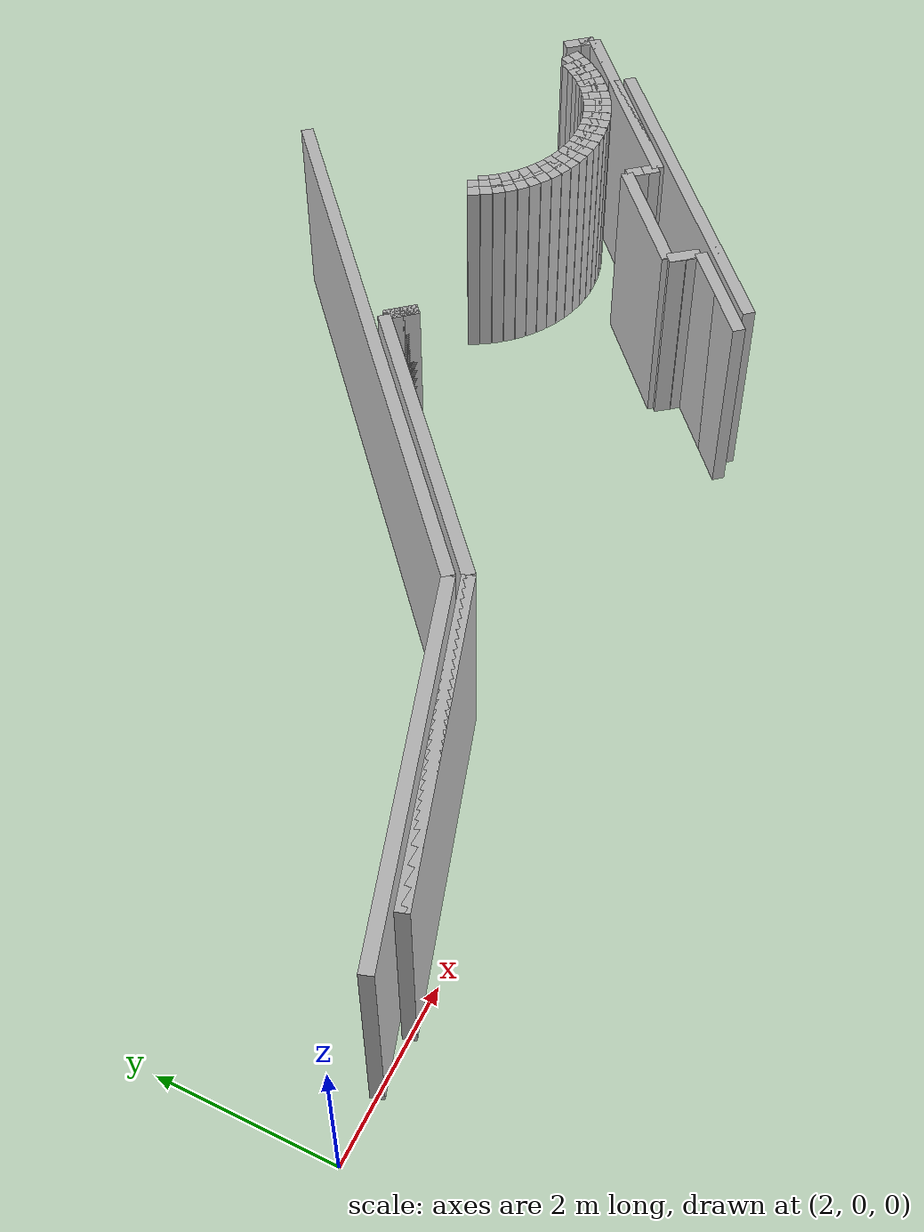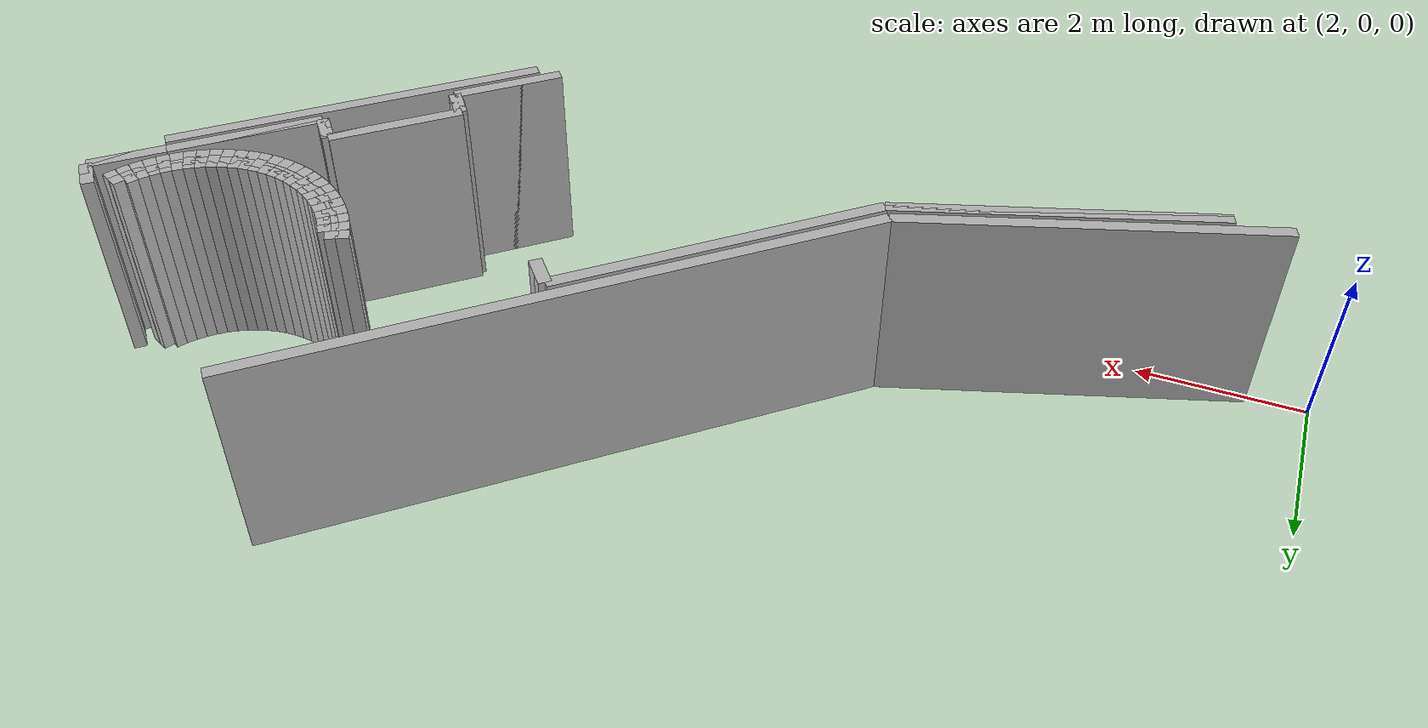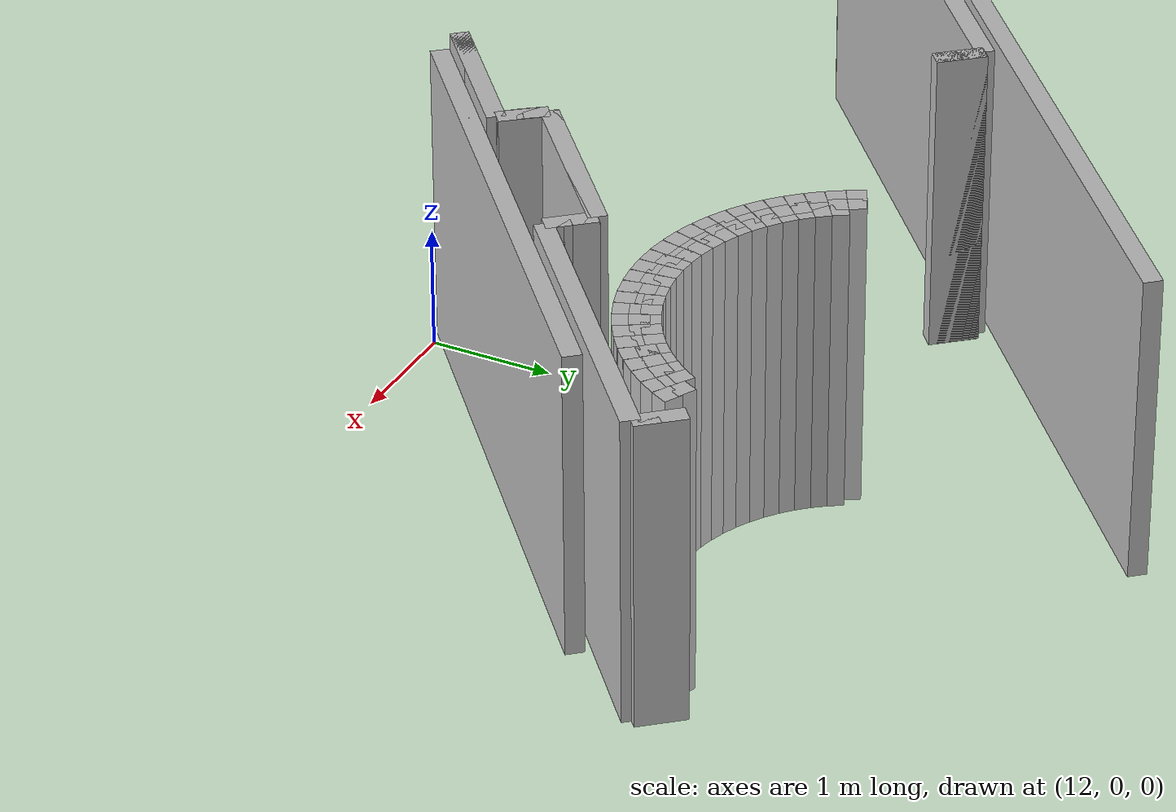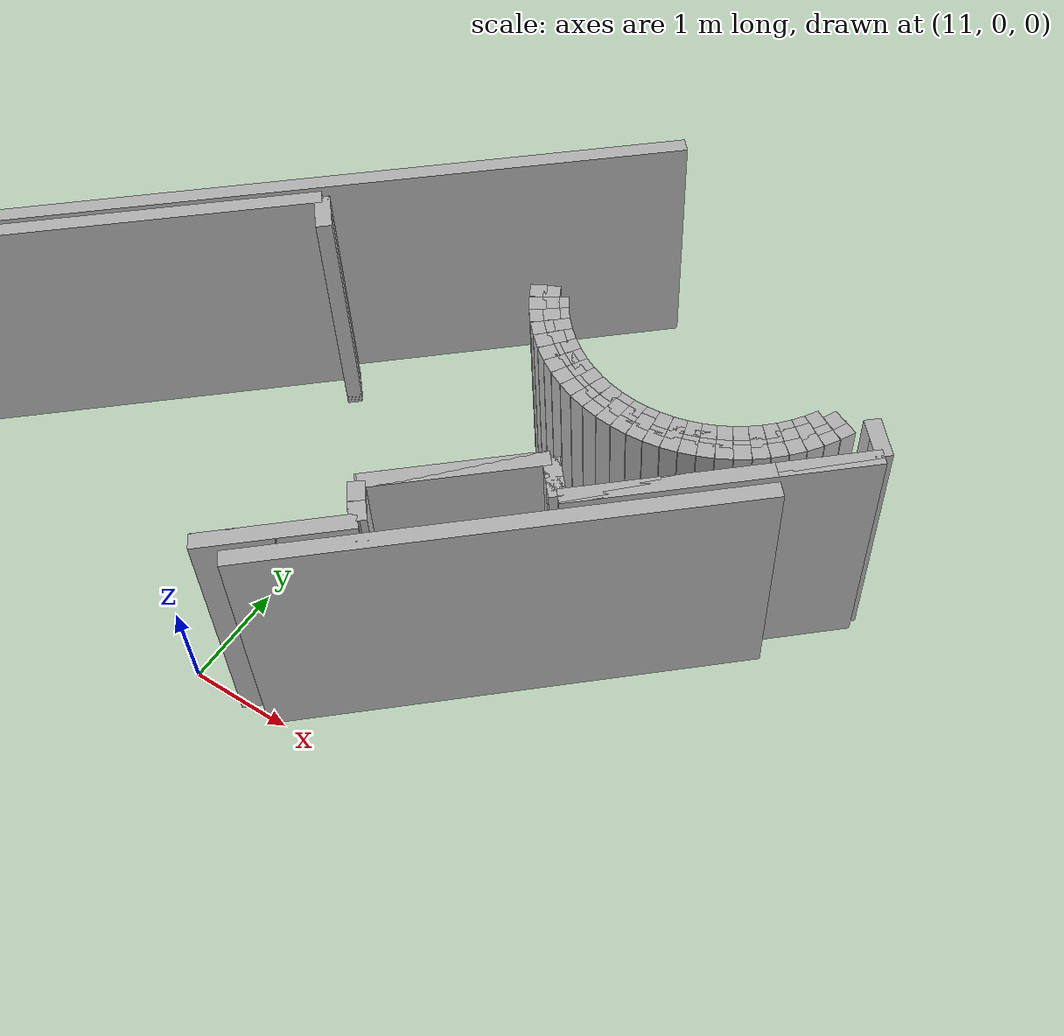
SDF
<sdf version="1.6">
 <model name="sps_1000">
  <static>1</static>
  <allow_auto_disable>0</allow_auto_disable>
  <link name="Wall469">
   <collision name="collision"><geometry><box><size>1.33494 0.15 2.5</size></box></geometry></collision>
   <visual name="visual">
    <geometry><box><size>1.33494 0.15 2.5</size></box></geometry>
    <transparency>0.0</transparency>
   </visual>
   <pose>12.0152 0.435035 1.25 0 -0 0.709909</pose>
  </link>
  <link name="Wall1686">
   <collision name="collision"><geometry><box><size>1.60002 0.15 2.5</size></box></geometry></collision>
   <visual name="visual">
    <geometry><box><size>1.60002 0.15 2.5</size></box></geometry>
    <transparency>0.0</transparency>
   </visual>
   <pose>12.8671 1.69459 1.25 0 -0 0.710016</pose>
  </link>
  <link name="Wall1979">
   <collision name="collision"><geometry><box><size>0.399695 0.15 2.5</size></box></geometry></collision>
   <visual name="visual">
    <geometry><box><size>0.399695 0.15 2.5</size></box></geometry>
    <transparency>0.0</transparency>
   </visual>
   <pose>10.099 3.5352 1.25 0 -0 2.28108</pose>
  </link>
  <link name="Wall2315">
   <collision name="collision"><geometry><box><size>0.00130621 0.15 2.5</size></box></geometry></collision>
   <visual name="visual">
    <geometry><box><size>0.00130621 0.15 2.5</size></box></geometry>
    <transparency>0.0</transparency>
   </visual>
   <pose>12.6525 0.717391 1.25 0 -0 2.22364</pose>
  </link>
  <link name="Wall7673">
   <collision name="collision"><geometry><box><size>3.80529 0.15 2.5</size></box></geometry></collision>
   <visual name="visual">
    <geometry><box><size>3.80529 0.15 2.5</size></box></geometry>
    <transparency>0.0</transparency>
   </visual>
   <pose>5.2102 0.577644 1.25 0 -0 0.308469</pose>
  </link>
  <link name="Wall7674">
   <collision name="collision"><geometry><box><size>3.88392 0.15 2.5</size></box></geometry></collision>
   <visual name="visual">
    <geometry><box><size>3.88392 0.15 2.5</size></box></geometry>
    <transparency>0.0</transparency>
   </visual>
   <pose>8.49584 2.421 1.25 0 -0 0.70992</pose>
  </link>
  <link name="Wall7675">
   <collision name="collision"><geometry><box><size>0.399695 0.15 2.5</size></box></geometry></collision>
   <visual name="visual">
    <geometry><box><size>0.399695 0.15 2.5</size></box></geometry>
    <transparency>0.0</transparency>
   </visual>
   <pose>10.099 3.5352 1.25 0 0 -0.860514</pose>
  </link>
  <link name="Wall7697">
   <collision name="collision"><geometry><box><size>0.400092 0.15 2.5</size></box></geometry></collision>
   <visual name="visual">
    <geometry><box><size>0.400092 0.15 2.5</size></box></geometry>
    <transparency>0.0</transparency>
   </visual>
   <pose>15.6517 3.8242 1.25 0 0 -0.860764</pose>
  </link>
  <link name="Wall7698">
   <collision name="collision"><geometry><box><size>2.69978 0.15 2.5</size></box></geometry></collision>
   <visual name="visual">
    <geometry><box><size>2.69978 0.15 2.5</size></box></geometry>
    <transparency>0.0</transparency>
   </visual>
   <pose>14.7583 2.79271 1.25 0 0 -2.4317</pose>
  </link>
  <link name="Wall7699">
   <collision name="collision"><geometry><box><size>0.399787 0.15 2.5</size></box></geometry></collision>
   <visual name="visual">
    <geometry><box><size>0.399787 0.15 2.5</size></box></geometry>
    <transparency>0.0</transparency>
   </visual>
   <pose>13.6041 2.0645 1.25 0 -0 2.28088</pose>
  </link>
  <link name="Wall7700">
   <collision name="collision"><geometry><box><size>1.58531 0.15 2.5</size></box></geometry></collision>
   <visual name="visual">
    <geometry><box><size>1.58531 0.15 2.5</size></box></geometry>
    <transparency>0.0</transparency>
   </visual>
   <pose>12.8727 1.69939 1.25 0 0 -2.43157</pose>
  </link>
  <link name="Wall7701">
   <collision name="collision"><geometry><box><size>0.400176 0.15 2.5</size></box></geometry></collision>
   <visual name="visual">
    <geometry><box><size>0.400176 0.15 2.5</size></box></geometry>
    <transparency>0.0</transparency>
   </visual>
   <pose>12.3965 1.02638 1.25 0 0 -0.896603</pose>
  </link>
  <link name="Wall7702">
   <collision name="collision"><geometry><box><size>1.33494 0.15 2.5</size></box></geometry></collision>
   <visual name="visual">
    <geometry><box><size>1.33494 0.15 2.5</size></box></geometry>
    <transparency>0.0</transparency>
   </visual>
   <pose>12.0152 0.435035 1.25 0 0 -2.43168</pose>
  </link>
  <link name="Wall9829">
   <collision name="collision"><geometry><box><size>0.130966 0.15 2.5</size></box></geometry></collision>
   <visual name="visual">
    <geometry><box><size>0.130966 0.15 2.5</size></box></geometry>
    <transparency>0.0</transparency>
   </visual>
   <pose>15.1247 3.7213 1.25 0 0 -2.13863</pose>
  </link>
  <link name="Wall9830">
   <collision name="collision"><geometry><box><size>0.130818 0.15 2.5</size></box></geometry></collision>
   <visual name="visual">
    <geometry><box><size>0.130818 0.15 2.5</size></box></geometry>
    <transparency>0.0</transparency>
   </visual>
   <pose>15.0496 3.61418 1.25 0 0 -2.22484</pose>
  </link>
  <link name="Wall9831">
   <collision name="collision"><geometry><box><size>0.130928 0.15 2.5</size></box></geometry></collision>
   <visual name="visual">
    <geometry><box><size>0.130928 0.15 2.5</size></box></geometry>
    <transparency>0.0</transparency>
   </visual>
   <pose>14.9655 3.51408 1.25 0 0 -2.31432</pose>
  </link>
  <link name="Wall9832">
   <collision name="collision"><geometry><box><size>0.130763 0.15 2.5</size></box></geometry></collision>
   <visual name="visual">
    <geometry><box><size>0.130763 0.15 2.5</size></box></geometry>
    <transparency>0.0</transparency>
   </visual>
   <pose>14.873 3.42171 1.25 0 0 -2.39944</pose>
  </link>
  <link name="Wall9833">
   <collision name="collision"><geometry><box><size>0.130855 0.15 2.5</size></box></geometry></collision>
   <visual name="visual">
    <geometry><box><size>0.130855 0.15 2.5</size></box></geometry>
    <transparency>0.0</transparency>
   </visual>
   <pose>14.7729 3.33769 1.25 0 0 -2.48718</pose>
  </link>
  <link name="Wall9834">
   <collision name="collision"><geometry><box><size>0.130783 0.15 2.5</size></box></geometry></collision>
   <visual name="visual">
    <geometry><box><size>0.130783 0.15 2.5</size></box></geometry>
    <transparency>0.0</transparency>
   </visual>
   <pose>14.6659 3.26277 1.25 0 0 -2.57508</pose>
  </link>
  <link name="Wall9835">
   <collision name="collision"><geometry><box><size>0.131066 0.15 2.5</size></box></geometry></collision>
   <visual name="visual">
    <geometry><box><size>0.131066 0.15 2.5</size></box></geometry>
    <transparency>0.0</transparency>
   </visual>
   <pose>14.5526 3.19737 1.25 0 0 -2.66087</pose>
  </link>
  <link name="Wall9836">
   <collision name="collision"><geometry><box><size>0.130949 0.15 2.5</size></box></geometry></collision>
   <visual name="visual">
    <geometry><box><size>0.130949 0.15 2.5</size></box></geometry>
    <transparency>0.0</transparency>
   </visual>
   <pose>14.434 3.14207 1.25 0 0 -2.74992</pose>
  </link>
  <link name="Wall9837">
   <collision name="collision"><geometry><box><size>0.130765 0.15 2.5</size></box></geometry></collision>
   <visual name="visual">
    <geometry><box><size>0.130765 0.15 2.5</size></box></geometry>
    <transparency>0.0</transparency>
   </visual>
   <pose>14.3111 3.09749 1.25 0 0 -2.83726</pose>
  </link>
  <link name="Wall9838">
   <collision name="collision"><geometry><box><size>0.130742 0.15 2.5</size></box></geometry></collision>
   <visual name="visual">
    <geometry><box><size>0.130742 0.15 2.5</size></box></geometry>
    <transparency>0.0</transparency>
   </visual>
   <pose>14.1849 3.0637 1.25 0 0 -2.92277</pose>
  </link>
  <link name="Wall9839">
   <collision name="collision"><geometry><box><size>0.130934 0.15 2.5</size></box></geometry></collision>
   <visual name="visual">
    <geometry><box><size>0.130934 0.15 2.5</size></box></geometry>
    <transparency>0.0</transparency>
   </visual>
   <pose>14.0561 3.041 1.25 0 0 -3.01117</pose>
  </link>
  <link name="Wall9840">
   <collision name="collision"><geometry><box><size>0.130919 0.15 2.5</size></box></geometry></collision>
   <visual name="visual">
    <geometry><box><size>0.130919 0.15 2.5</size></box></geometry>
    <transparency>0.0</transparency>
   </visual>
   <pose>13.9258 3.02968 1.25 0 0 -3.09869</pose>
  </link>
  <link name="Wall9841">
   <collision name="collision"><geometry><box><size>0.130927 0.15 2.5</size></box></geometry></collision>
   <visual name="visual">
    <geometry><box><size>0.130927 0.15 2.5</size></box></geometry>
    <transparency>0.0</transparency>
   </visual>
   <pose>13.795 3.02977 1.25 0 -0 3.09729</pose>
  </link>
  <link name="Wall9842">
   <collision name="collision"><geometry><box><size>0.130692 0.15 2.5</size></box></geometry></collision>
   <visual name="visual">
    <geometry><box><size>0.130692 0.15 2.5</size></box></geometry>
    <transparency>0.0</transparency>
   </visual>
   <pose>13.6648 3.04118 1.25 0 -0 3.01092</pose>
  </link>
  <link name="Wall9843">
   <collision name="collision"><geometry><box><size>0.130921 0.15 2.5</size></box></geometry></collision>
   <visual name="visual">
    <geometry><box><size>0.130921 0.15 2.5</size></box></geometry>
    <transparency>0.0</transparency>
   </visual>
   <pose>13.5362 3.06389 1.25 0 -0 2.92308</pose>
  </link>
  <link name="Wall9844">
   <collision name="collision"><geometry><box><size>0.130896 0.15 2.5</size></box></geometry></collision>
   <visual name="visual">
    <geometry><box><size>0.130896 0.15 2.5</size></box></geometry>
    <transparency>0.0</transparency>
   </visual>
   <pose>13.4098 3.09779 1.25 0 -0 2.83562</pose>
  </link>
  <link name="Wall9845">
   <collision name="collision"><geometry><box><size>0.130724 0.15 2.5</size></box></geometry></collision>
   <visual name="visual">
    <geometry><box><size>0.130724 0.15 2.5</size></box></geometry>
    <transparency>0.0</transparency>
   </visual>
   <pose>13.287 3.1425 1.25 0 -0 2.74921</pose>
  </link>
  <link name="Wall9846">
   <collision name="collision"><geometry><box><size>0.131066 0.15 2.5</size></box></geometry></collision>
   <visual name="visual">
    <geometry><box><size>0.131066 0.15 2.5</size></box></geometry>
    <transparency>0.0</transparency>
   </visual>
   <pose>13.1685 3.1978 1.25 0 -0 2.66087</pose>
  </link>
  <link name="Wall9847">
   <collision name="collision"><geometry><box><size>0.130628 0.15 2.5</size></box></geometry></collision>
   <visual name="visual">
    <geometry><box><size>0.130628 0.15 2.5</size></box></geometry>
    <transparency>0.0</transparency>
   </visual>
   <pose>13.0554 3.2632 1.25 0 -0 2.57433</pose>
  </link>
  <link name="Wall9848">
   <collision name="collision"><geometry><box><size>0.130929 0.15 2.5</size></box></geometry></collision>
   <visual name="visual">
    <geometry><box><size>0.130929 0.15 2.5</size></box></geometry>
    <transparency>0.0</transparency>
   </visual>
   <pose>12.9484 3.33818 1.25 0 -0 2.48644</pose>
  </link>
  <link name="Wall9849">
   <collision name="collision"><geometry><box><size>0.130984 0.15 2.5</size></box></geometry></collision>
   <visual name="visual">
    <geometry><box><size>0.130984 0.15 2.5</size></box></geometry>
    <transparency>0.0</transparency>
   </visual>
   <pose>12.8481 3.42229 1.25 0 -0 2.40036</pose>
  </link>
  <link name="Wall9850">
   <collision name="collision"><geometry><box><size>0.130639 0.15 2.5</size></box></geometry></collision>
   <visual name="visual">
    <geometry><box><size>0.130639 0.15 2.5</size></box></geometry>
    <transparency>0.0</transparency>
   </visual>
   <pose>12.7557 3.51469 1.25 0 -0 2.31191</pose>
  </link>
  <link name="Wall9851">
   <collision name="collision"><geometry><box><size>0.131075 0.15 2.5</size></box></geometry></collision>
   <visual name="visual">
    <geometry><box><size>0.131075 0.15 2.5</size></box></geometry>
    <transparency>0.0</transparency>
   </visual>
   <pose>12.6717 3.61488 1.25 0 -0 2.2251</pose>
  </link>
  <link name="Wall9852">
   <collision name="collision"><geometry><box><size>0.130834 0.15 2.5</size></box></geometry></collision>
   <visual name="visual">
    <geometry><box><size>0.130834 0.15 2.5</size></box></geometry>
    <transparency>0.0</transparency>
   </visual>
   <pose>12.5968 3.72209 1.25 0 -0 2.13706</pose>
  </link>
  <link name="Wall15311">
   <collision name="collision"><geometry><box><size>0.137969 0.15 2.5</size></box></geometry></collision>
   <visual name="visual">
    <geometry><box><size>0.137969 0.15 2.5</size></box></geometry>
    <transparency>0.0</transparency>
   </visual>
   <pose>15.2611 3.7975 1.25 0 0 -2.04988</pose>
  </link>
  <link name="Wall15312">
   <collision name="collision"><geometry><box><size>0.137889 0.15 2.5</size></box></geometry></collision>
   <visual name="visual">
    <geometry><box><size>0.137889 0.15 2.5</size></box></geometry>
    <transparency>0.0</transparency>
   </visual>
   <pose>15.1922 3.67818 1.25 0 0 -2.13916</pose>
  </link>
  <link name="Wall15313">
   <collision name="collision"><geometry><box><size>0.137643 0.15 2.5</size></box></geometry></collision>
   <visual name="visual">
    <geometry><box><size>0.137643 0.15 2.5</size></box></geometry>
    <transparency>0.0</transparency>
   </visual>
   <pose>15.1132 3.56547 1.25 0 0 -2.22538</pose>
  </link>
  <link name="Wall15314">
   <collision name="collision"><geometry><box><size>0.138025 0.15 2.5</size></box></geometry></collision>
   <visual name="visual">
    <geometry><box><size>0.138025 0.15 2.5</size></box></geometry>
    <transparency>0.0</transparency>
   </visual>
   <pose>15.0246 3.45998 1.25 0 0 -2.31209</pose>
  </link>
  <link name="Wall15315">
   <collision name="collision"><geometry><box><size>0.13786 0.15 2.5</size></box></geometry></collision>
   <visual name="visual">
    <geometry><box><size>0.13786 0.15 2.5</size></box></geometry>
    <transparency>0.0</transparency>
   </visual>
   <pose>14.9271 3.36259 1.25 0 0 -2.4016</pose>
  </link>
  <link name="Wall15316">
   <collision name="collision"><geometry><box><size>0.137792 0.15 2.5</size></box></geometry></collision>
   <visual name="visual">
    <geometry><box><size>0.137792 0.15 2.5</size></box></geometry>
    <transparency>0.0</transparency>
   </visual>
   <pose>14.8216 3.27409 1.25 0 0 -2.4856</pose>
  </link>
  <link name="Wall15317">
   <collision name="collision"><geometry><box><size>0.137912 0.15 2.5</size></box></geometry></collision>
   <visual name="visual">
    <geometry><box><size>0.137912 0.15 2.5</size></box></geometry>
    <transparency>0.0</transparency>
   </visual>
   <pose>14.7089 3.19508 1.25 0 0 -2.57544</pose>
  </link>
  <link name="Wall15318">
   <collision name="collision"><geometry><box><size>0.137753 0.15 2.5</size></box></geometry></collision>
   <visual name="visual">
    <geometry><box><size>0.137753 0.15 2.5</size></box></geometry>
    <transparency>0.0</transparency>
   </visual>
   <pose>14.5896 3.1263 1.25 0 0 -2.6617</pose>
  </link>
  <link name="Wall15319">
   <collision name="collision"><geometry><box><size>0.137818 0.15 2.5</size></box></geometry></collision>
   <visual name="visual">
    <geometry><box><size>0.137818 0.15 2.5</size></box></geometry>
    <transparency>0.0</transparency>
   </visual>
   <pose>14.4648 3.06819 1.25 0 0 -2.7499</pose>
  </link>
  <link name="Wall15320">
   <collision name="collision"><geometry><box><size>0.138003 0.15 2.5</size></box></geometry></collision>
   <visual name="visual">
    <geometry><box><size>0.138003 0.15 2.5</size></box></geometry>
    <transparency>0.0</transparency>
   </visual>
   <pose>14.3353 3.02119 1.25 0 0 -2.83705</pose>
  </link>
  <link name="Wall15321">
   <collision name="collision"><geometry><box><size>0.137839 0.15 2.5</size></box></geometry></collision>
   <visual name="visual">
    <geometry><box><size>0.137839 0.15 2.5</size></box></geometry>
    <transparency>0.0</transparency>
   </visual>
   <pose>14.2021 2.98561 1.25 0 0 -2.92379</pose>
  </link>
  <link name="Wall15322">
   <collision name="collision"><geometry><box><size>0.137778 0.15 2.5</size></box></geometry></collision>
   <visual name="visual">
    <geometry><box><size>0.137778 0.15 2.5</size></box></geometry>
    <transparency>0.0</transparency>
   </visual>
   <pose>14.0666 2.96171 1.25 0 0 -3.01053</pose>
  </link>
  <link name="Wall15323">
   <collision name="collision"><geometry><box><size>0.13795 0.15 2.5</size></box></geometry></collision>
   <visual name="visual">
    <geometry><box><size>0.13795 0.15 2.5</size></box></geometry>
    <transparency>0.0</transparency>
   </visual>
   <pose>13.9293 2.94969 1.25 0 0 -3.09778</pose>
  </link>
  <link name="Wall15324">
   <collision name="collision"><geometry><box><size>0.137706 0.15 2.5</size></box></geometry></collision>
   <visual name="visual">
    <geometry><box><size>0.137706 0.15 2.5</size></box></geometry>
    <transparency>0.0</transparency>
   </visual>
   <pose>13.7916 2.94969 1.25 0 -0 3.0977</pose>
  </link>
  <link name="Wall15325">
   <collision name="collision"><geometry><box><size>0.13796 0.15 2.5</size></box></geometry></collision>
   <visual name="visual">
    <geometry><box><size>0.13796 0.15 2.5</size></box></geometry>
    <transparency>0.0</transparency>
   </visual>
   <pose>13.6545 2.96171 1.25 0 -0 3.01071</pose>
  </link>
  <link name="Wall15326">
   <collision name="collision"><geometry><box><size>0.137938 0.15 2.5</size></box></geometry></collision>
   <visual name="visual">
    <geometry><box><size>0.137938 0.15 2.5</size></box></geometry>
    <transparency>0.0</transparency>
   </visual>
   <pose>13.5188 2.9857 1.25 0 -0 2.92259</pose>
  </link>
  <link name="Wall15327">
   <collision name="collision"><geometry><box><size>0.13777 0.15 2.5</size></box></geometry></collision>
   <visual name="visual">
    <geometry><box><size>0.13777 0.15 2.5</size></box></geometry>
    <transparency>0.0</transparency>
   </visual>
   <pose>13.3857 3.02138 1.25 0 -0 2.83651</pose>
  </link>
  <link name="Wall15328">
   <collision name="collision"><geometry><box><size>0.137888 0.15 2.5</size></box></geometry></collision>
   <visual name="visual">
    <geometry><box><size>0.137888 0.15 2.5</size></box></geometry>
    <transparency>0.0</transparency>
   </visual>
   <pose>13.2563 3.06847 1.25 0 -0 2.74867</pose>
  </link>
  <link name="Wall15329">
   <collision name="collision"><geometry><box><size>0.137865 0.15 2.5</size></box></geometry></collision>
   <visual name="visual">
    <geometry><box><size>0.137865 0.15 2.5</size></box></geometry>
    <transparency>0.0</transparency>
   </visual>
   <pose>13.1316 3.12678 1.25 0 -0 2.66013</pose>
  </link>
  <link name="Wall15330">
   <collision name="collision"><geometry><box><size>0.137758 0.15 2.5</size></box></geometry></collision>
   <visual name="visual">
    <geometry><box><size>0.137758 0.15 2.5</size></box></geometry>
    <transparency>0.0</transparency>
   </visual>
   <pose>13.0124 3.19569 1.25 0 -0 2.57473</pose>
  </link>
  <link name="Wall15331">
   <collision name="collision"><geometry><box><size>0.137899 0.15 2.5</size></box></geometry></collision>
   <visual name="visual">
    <geometry><box><size>0.137899 0.15 2.5</size></box></geometry>
    <transparency>0.0</transparency>
   </visual>
   <pose>12.8996 3.27467 1.25 0 -0 2.48676</pose>
  </link>
  <link name="Wall15332">
   <collision name="collision"><geometry><box><size>0.13789 0.15 2.5</size></box></geometry></collision>
   <visual name="visual">
    <geometry><box><size>0.13789 0.15 2.5</size></box></geometry>
    <transparency>0.0</transparency>
   </visual>
   <pose>12.7941 3.36326 1.25 0 -0 2.3994</pose>
  </link>
  <link name="Wall15333">
   <collision name="collision"><geometry><box><size>0.137767 0.15 2.5</size></box></geometry></collision>
   <visual name="visual">
    <geometry><box><size>0.137767 0.15 2.5</size></box></geometry>
    <transparency>0.0</transparency>
   </visual>
   <pose>12.6967 3.46068 1.25 0 -0 2.31201</pose>
  </link>
  <link name="Wall15334">
   <collision name="collision"><geometry><box><size>0.137899 0.15 2.5</size></box></geometry></collision>
   <visual name="visual">
    <geometry><box><size>0.137899 0.15 2.5</size></box></geometry>
    <transparency>0.0</transparency>
   </visual>
   <pose>12.6082 3.56618 1.25 0 -0 2.22563</pose>
  </link>
  <link name="Wall15335">
   <collision name="collision"><geometry><box><size>0.137758 0.15 2.5</size></box></geometry></collision>
   <visual name="visual">
    <geometry><box><size>0.137758 0.15 2.5</size></box></geometry>
    <transparency>0.0</transparency>
   </visual>
   <pose>12.5293 3.67897 1.25 0 -0 2.13766</pose>
  </link>
  <link name="Wall15336">
   <collision name="collision"><geometry><box><size>0.137969 0.15 2.5</size></box></geometry></collision>
   <visual name="visual">
    <geometry><box><size>0.137969 0.15 2.5</size></box></geometry>
    <transparency>0.0</transparency>
   </visual>
   <pose>12.4605 3.79829 1.25 0 -0 2.04988</pose>
  </link>
  <link name="Wall15367">
   <collision name="collision"><geometry><box><size>4.39287 0.15 2.5</size></box></geometry></collision>
   <visual name="visual">
    <geometry><box><size>4.39287 0.15 2.5</size></box></geometry>
    <transparency>0.0</transparency>
   </visual>
   <pose>4.83091 0.666847 1.25 0 -0 0.308473</pose>
  </link>
  <link name="Wall15368">
   <collision name="collision"><geometry><box><size>7.34258 0.15 2.5</size></box></geometry></collision>
   <visual name="visual">
    <geometry><box><size>7.34258 0.15 2.5</size></box></geometry>
    <transparency>0.0</transparency>
   </visual>
   <pose>9.70797 3.72661 1.25 0 -0 0.709944</pose>
  </link>
  <link name="Wall15373">
   <collision name="collision"><geometry><box><size>4.50185 0.15 2.5</size></box></geometry></collision>
   <visual name="visual">
    <geometry><box><size>4.50185 0.15 2.5</size></box></geometry>
    <transparency>0.0</transparency>
   </visual>
   <pose>13.5228 1.46714 1.25 0 -0 0.709948</pose>
  </link>
  <link name="Wall21914">
   <collision name="collision"><geometry><box><size>0.148239 0.15 2.5</size></box></geometry></collision>
   <visual name="visual">
    <geometry><box><size>0.148239 0.15 2.5</size></box></geometry>
    <transparency>0.0</transparency>
   </visual>
   <pose>15.3673 3.74217 1.25 0 0 -2.05194</pose>
  </link>
  <link name="Wall21915">
   <collision name="collision"><geometry><box><size>0.148342 0.15 2.5</size></box></geometry></collision>
   <visual name="visual">
    <geometry><box><size>0.148342 0.15 2.5</size></box></geometry>
    <transparency>0.0</transparency>
   </visual>
   <pose>15.2932 3.61388 1.25 0 0 -2.13712</pose>
  </link>
  <link name="Wall21916">
   <collision name="collision"><geometry><box><size>0.148338 0.15 2.5</size></box></geometry></collision>
   <visual name="visual">
    <geometry><box><size>0.148338 0.15 2.5</size></box></geometry>
    <transparency>0.0</transparency>
   </visual>
   <pose>15.2082 3.49248 1.25 0 0 -2.22607</pose>
  </link>
  <link name="Wall21917">
   <collision name="collision"><geometry><box><size>0.148347 0.15 2.5</size></box></geometry></collision>
   <visual name="visual">
    <geometry><box><size>0.148347 0.15 2.5</size></box></geometry>
    <transparency>0.0</transparency>
   </visual>
   <pose>15.1129 3.37898 1.25 0 0 -2.31254</pose>
  </link>
  <link name="Wall21918">
   <collision name="collision"><geometry><box><size>0.148347 0.15 2.5</size></box></geometry></collision>
   <visual name="visual">
    <geometry><box><size>0.148347 0.15 2.5</size></box></geometry>
    <transparency>0.0</transparency>
   </visual>
   <pose>15.0081 3.27418 1.25 0 0 -2.39985</pose>
  </link>
  <link name="Wall21919">
   <collision name="collision"><geometry><box><size>0.148226 0.15 2.5</size></box></geometry></collision>
   <visual name="visual">
    <geometry><box><size>0.148226 0.15 2.5</size></box></geometry>
    <transparency>0.0</transparency>
   </visual>
   <pose>14.8946 3.17897 1.25 0 0 -2.4873</pose>
  </link>
  <link name="Wall21920">
   <collision name="collision"><geometry><box><size>0.148342 0.15 2.5</size></box></geometry></collision>
   <visual name="visual">
    <geometry><box><size>0.148342 0.15 2.5</size></box></geometry>
    <transparency>0.0</transparency>
   </visual>
   <pose>14.7732 3.09407 1.25 0 0 -2.57527</pose>
  </link>
  <link name="Wall21921">
   <collision name="collision"><geometry><box><size>0.148401 0.15 2.5</size></box></geometry></collision>
   <visual name="visual">
    <geometry><box><size>0.148401 0.15 2.5</size></box></geometry>
    <transparency>0.0</transparency>
   </visual>
   <pose>14.6449 3.01997 1.25 0 0 -2.66102</pose>
  </link>
  <link name="Wall21922">
   <collision name="collision"><geometry><box><size>0.148246 0.15 2.5</size></box></geometry></collision>
   <visual name="visual">
    <geometry><box><size>0.148246 0.15 2.5</size></box></geometry>
    <transparency>0.0</transparency>
   </visual>
   <pose>14.5106 2.95738 1.25 0 0 -2.75</pose>
  </link>
  <link name="Wall21923">
   <collision name="collision"><geometry><box><size>0.148464 0.15 2.5</size></box></geometry></collision>
   <visual name="visual">
    <geometry><box><size>0.148464 0.15 2.5</size></box></geometry>
    <transparency>0.0</transparency>
   </visual>
   <pose>14.3712 2.90678 1.25 0 0 -2.83635</pose>
  </link>
  <link name="Wall21924">
   <collision name="collision"><geometry><box><size>0.148266 0.15 2.5</size></box></geometry></collision>
   <visual name="visual">
    <geometry><box><size>0.148266 0.15 2.5</size></box></geometry>
    <transparency>0.0</transparency>
   </visual>
   <pose>14.228 2.86848 1.25 0 0 -2.92417</pose>
  </link>
  <link name="Wall21925">
   <collision name="collision"><geometry><box><size>0.148309 0.15 2.5</size></box></geometry></collision>
   <visual name="visual">
    <geometry><box><size>0.148309 0.15 2.5</size></box></geometry>
    <transparency>0.0</transparency>
   </visual>
   <pose>14.0821 2.84279 1.25 0 0 -3.01035</pose>
  </link>
  <link name="Wall21926">
   <collision name="collision"><geometry><box><size>0.148332 0.15 2.5</size></box></geometry></collision>
   <visual name="visual">
    <geometry><box><size>0.148332 0.15 2.5</size></box></geometry>
    <transparency>0.0</transparency>
   </visual>
   <pose>13.9345 2.82988 1.25 0 0 -3.09837</pose>
  </link>
  <link name="Wall21927">
   <collision name="collision"><geometry><box><size>0.14834 0.15 2.5</size></box></geometry></collision>
   <visual name="visual">
    <geometry><box><size>0.14834 0.15 2.5</size></box></geometry>
    <transparency>0.0</transparency>
   </visual>
   <pose>13.7863 2.82997 1.25 0 -0 3.09714</pose>
  </link>
  <link name="Wall21928">
   <collision name="collision"><geometry><box><size>0.148249 0.15 2.5</size></box></geometry></collision>
   <visual name="visual">
    <geometry><box><size>0.148249 0.15 2.5</size></box></geometry>
    <transparency>0.0</transparency>
   </visual>
   <pose>13.6388 2.84297 1.25 0 -0 3.01029</pose>
  </link>
  <link name="Wall21929">
   <collision name="collision"><geometry><box><size>0.148339 0.15 2.5</size></box></geometry></collision>
   <visual name="visual">
    <geometry><box><size>0.148339 0.15 2.5</size></box></geometry>
    <transparency>0.0</transparency>
   </visual>
   <pose>13.4929 2.8687 1.25 0 -0 2.92386</pose>
  </link>
  <link name="Wall21930">
   <collision name="collision"><geometry><box><size>0.148213 0.15 2.5</size></box></geometry></collision>
   <visual name="visual">
    <geometry><box><size>0.148213 0.15 2.5</size></box></geometry>
    <transparency>0.0</transparency>
   </visual>
   <pose>13.3498 2.907 1.25 0 -0 2.83625</pose>
  </link>
  <link name="Wall21931">
   <collision name="collision"><geometry><box><size>0.148409 0.15 2.5</size></box></geometry></collision>
   <visual name="visual">
    <geometry><box><size>0.148409 0.15 2.5</size></box></geometry>
    <transparency>0.0</transparency>
   </visual>
   <pose>13.2106 2.95778 1.25 0 -0 2.74734</pose>
  </link>
  <link name="Wall21932">
   <collision name="collision"><geometry><box><size>0.148316 0.15 2.5</size></box></geometry></collision>
   <visual name="visual">
    <geometry><box><size>0.148316 0.15 2.5</size></box></geometry>
    <transparency>0.0</transparency>
   </visual>
   <pose>13.0763 3.02049 1.25 0 -0 2.66212</pose>
  </link>
  <link name="Wall21933">
   <collision name="collision"><geometry><box><size>0.148286 0.15 2.5</size></box></geometry></collision>
   <visual name="visual">
    <geometry><box><size>0.148286 0.15 2.5</size></box></geometry>
    <transparency>0.0</transparency>
   </visual>
   <pose>12.948 3.09459 1.25 0 -0 2.57357</pose>
  </link>
  <link name="Wall21934">
   <collision name="collision"><geometry><box><size>0.148483 0.15 2.5</size></box></geometry></collision>
   <visual name="visual">
    <geometry><box><size>0.148483 0.15 2.5</size></box></geometry>
    <transparency>0.0</transparency>
   </visual>
   <pose>12.8266 3.17967 1.25 0 -0 2.48707</pose>
  </link>
  <link name="Wall21935">
   <collision name="collision"><geometry><box><size>0.148212 0.15 2.5</size></box></geometry></collision>
   <visual name="visual">
    <geometry><box><size>0.148212 0.15 2.5</size></box></geometry>
    <transparency>0.0</transparency>
   </visual>
   <pose>12.7131 3.27498 1.25 0 -0 2.39901</pose>
  </link>
  <link name="Wall21936">
   <collision name="collision"><geometry><box><size>0.148212 0.15 2.5</size></box></geometry></collision>
   <visual name="visual">
    <geometry><box><size>0.148212 0.15 2.5</size></box></geometry>
    <transparency>0.0</transparency>
   </visual>
   <pose>12.6084 3.37968 1.25 0 -0 2.31338</pose>
  </link>
  <link name="Wall21937">
   <collision name="collision"><geometry><box><size>0.148372 0.15 2.5</size></box></geometry></collision>
   <visual name="visual">
    <geometry><box><size>0.148372 0.15 2.5</size></box></geometry>
    <transparency>0.0</transparency>
   </visual>
   <pose>12.5131 3.49318 1.25 0 -0 2.22433</pose>
  </link>
  <link name="Wall21938">
   <collision name="collision"><geometry><box><size>0.148492 0.15 2.5</size></box></geometry></collision>
   <visual name="visual">
    <geometry><box><size>0.148492 0.15 2.5</size></box></geometry>
    <transparency>0.0</transparency>
   </visual>
   <pose>12.4282 3.6147 1.25 0 -0 2.13794</pose>
  </link>
  <link name="Wall21939">
   <collision name="collision"><geometry><box><size>0.1481 0.15 2.5</size></box></geometry></collision>
   <visual name="visual">
    <geometry><box><size>0.1481 0.15 2.5</size></box></geometry>
    <transparency>0.0</transparency>
   </visual>
   <pose>12.3541 3.743 1.25 0 -0 2.05103</pose>
  </link>
  <link name="Wall26285">
   <collision name="collision"><geometry><box><size>3.80541 0.15 2.5</size></box></geometry></collision>
   <visual name="visual">
    <geometry><box><size>3.80541 0.15 2.5</size></box></geometry>
    <transparency>0.0</transparency>
   </visual>
   <pose>5.21013 0.577644 1.25 0 -0 0.308459</pose>
  </link>
  <link name="Wall26286">
   <collision name="collision"><geometry><box><size>3.88392 0.15 2.5</size></box></geometry></collision>
   <visual name="visual">
    <geometry><box><size>3.88392 0.15 2.5</size></box></geometry>
    <transparency>0.0</transparency>
   </visual>
   <pose>8.49584 2.421 1.25 0 -0 0.70992</pose>
  </link>
  <link name="Wall30867">
   <collision name="collision"><geometry><box><size>0.20032 0.15 2.5</size></box></geometry></collision>
   <visual name="visual">
    <geometry><box><size>0.20032 0.15 2.5</size></box></geometry>
    <transparency>0.0</transparency>
   </visual>
   <pose>13.6699 1.9879 1.25 0 -0 2.27985</pose>
  </link>
  <link name="Wall30868">
   <collision name="collision"><geometry><box><size>0.200678 0.15 2.5</size></box></geometry></collision>
   <visual name="visual">
    <geometry><box><size>0.200678 0.15 2.5</size></box></geometry>
    <transparency>0.0</transparency>
   </visual>
   <pose>13.5394 2.14012 1.25 0 -0 2.27913</pose>
  </link>
  <link name="Wall30869">
   <collision name="collision"><geometry><box><size>1.8 0.15 2.5</size></box></geometry></collision>
   <visual name="visual">
    <geometry><box><size>1.8 0.15 2.5</size></box></geometry>
    <transparency>0.0</transparency>
   </visual>
   <pose>14.417 2.4995 1.25 0 -0 0.709895</pose>
  </link>
  <link name="Wall30870">
   <collision name="collision"><geometry><box><size>0.899784 0.15 2.5</size></box></geometry></collision>
   <visual name="visual">
    <geometry><box><size>0.899784 0.15 2.5</size></box></geometry>
    <transparency>0.0</transparency>
   </visual>
   <pose>15.4408 3.37929 1.25 0 -0 0.709877</pose>
  </link>
  <link name="Wall30871">
   <collision name="collision"><geometry><box><size>0.199996 0.15 2.5</size></box></geometry></collision>
   <visual name="visual">
    <geometry><box><size>0.199996 0.15 2.5</size></box></geometry>
    <transparency>0.0</transparency>
   </visual>
   <pose>15.7168 3.74831 1.25 0 -0 2.28124</pose>
  </link>
  <link name="Wall37834">
   <collision name="collision"><geometry><box><size>0.198911 0.15 2.5</size></box></geometry></collision>
   <visual name="visual">
    <geometry><box><size>0.198911 0.15 2.5</size></box></geometry>
    <transparency>0.0</transparency>
   </visual>
   <pose>12.4567 0.944899 1.25 0 -0 2.28149</pose>
  </link>
  <link name="Wall37835">
   <collision name="collision"><geometry><box><size>0.00189602 0.15 2.5</size></box></geometry></collision>
   <visual name="visual">
    <geometry><box><size>0.00189602 0.15 2.5</size></box></geometry>
    <transparency>0.0</transparency>
   </visual>
   <pose>12.3913 1.02107 1.25 0 -0 2.14987</pose>
  </link>
  <link name="Wall37836">
   <collision name="collision"><geometry><box><size>0.200186 0.15 2.5</size></box></geometry></collision>
   <visual name="visual">
    <geometry><box><size>0.200186 0.15 2.5</size></box></geometry>
    <transparency>0.0</transparency>
   </visual>
   <pose>12.3312 1.10228 1.25 0 -0 2.20863</pose>
  </link>
 </model>
</sdf>
